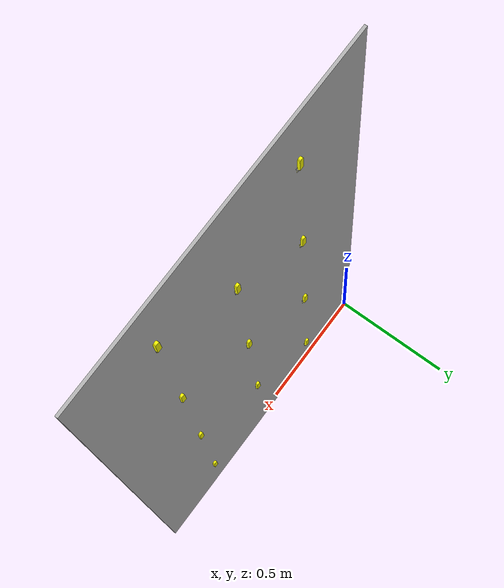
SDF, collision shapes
<?xml version="1.0" ?>
<sdf version="1.5">
  <model name="drc_practice_ball_valve_wall">
    <include>
      <uri>model://drc_practice_valve_wall</uri>
      <name>wall</name>
      <static>false</static>
    </include>
    <joint name="wall-joint" type="revolute">
      <parent>world</parent>
      <child>wall::link</child>
      <axis>
        <xyz>0 0 1</xyz>
        <limit>
          <lower>0</lower>
          <upper>0</upper>
        </limit>
        <use_parent_model_frame>true</use_parent_model_frame>
      </axis>
    </joint>
    <include>
      <uri>model://drc_practice_ball_valve</uri>
      <name>valve_0</name>
      <pose>0.919587 -0.0092 0.285 0 0 0</pose>
    </include>
    <include>
      <uri>model://drc_practice_ball_valve</uri>
      <name>valve_1</name>
      <pose>0.919587 -0.0092 0.8954 0 0 0</pose>
    </include>
    <include>
      <uri>model://drc_practice_ball_valve</uri>
      <name>valve_2</name>
      <pose>0.919587 -0.0092 1.5058 0 0 0</pose>
    </include>
    <include>
      <uri>model://drc_practice_ball_valve</uri>
      <name>valve_3</name>
      <pose>0.919587 -0.0092 2.1162 0 0 0</pose>
    </include>
    <include>
      <uri>model://drc_practice_ball_valve</uri>
      <name>valve_4</name>
      <pose>0.614335 -0.0092 0.5896 0 0 0</pose>
    </include>
    <include>
      <uri>model://drc_practice_ball_valve</uri>
      <name>valve_5</name>
      <pose>0.614335 -0.0092 1.2 0 0 0</pose>
    </include>
    <include>
      <uri>model://drc_practice_ball_valve</uri>
      <name>valve_6</name>
      <pose>0.614335 -0.0092 1.8104 0 0 0</pose>
    </include>
    <include>
      <uri>model://drc_practice_ball_valve</uri>
      <name>valve_7</name>
      <pose>0.309083 -0.0092 0.285 0 0 0</pose>
    </include>
    <include>
      <uri>model://drc_practice_ball_valve</uri>
      <name>valve_8</name>
      <pose>0.309083 -0.0092 0.8954 0 0 0</pose>
    </include>
    <include>
      <uri>model://drc_practice_ball_valve</uri>
      <name>valve_9</name>
      <pose>0.309083 -0.0092 1.5058 0 0 0</pose>
    </include>
    <include>
      <uri>model://drc_practice_ball_valve</uri>
      <name>valve_10</name>
      <pose>0.309083 -0.0092 2.1162 0 0 0</pose>
    </include>
  </model>
</sdf>

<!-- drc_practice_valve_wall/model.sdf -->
<sdf version="1.5">
  <model name="drc_practice_valve_wall">
    <link name="link">

      <inertial>
        <pose>0.6096 0.00476 1.2192 0 0 0</pose>
        <mass>2.5</mass>
        <inertia>
          <ixx>1.23872608133</ixx>
          <ixy>0</ixy>
          <ixz>0</ixz>
          <iyy>1.548384</iyy>
          <iyz>0</iyz>
          <izz>0.30969568133</izz>
        </inertia>
      </inertial>

      <collision name="collision">
        <pose>0.6096 0.00476 1.2192 0 0 0</pose>
        <geometry>
          <box>
            <size>1.2192 0.00952 2.4384</size>
          </box>
        </geometry>
      </collision>
      <visual name="visual">
        <pose>-0.004536186 -0.003571748 0 0 0 0</pose>
        <geometry>
          <mesh>
            <uri>model://drc_practice_valve_wall/meshes/five_dice_wall.dae</uri>
          </mesh>
        </geometry>
      </visual>
    </link>
  </model>
</sdf>

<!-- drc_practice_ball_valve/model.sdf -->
<sdf version="1.5">
  <model name="drc_practice_ball_valve">
    <link name="handle">
      <pose>0 0.0275 0.02222 -1.5708 3.1415 0</pose>
      <inertial>
        <mass>0.0802</mass>
        <pose>0.0 0.0435 0.0055 0 0 0</pose>
        <inertia>
          <ixx>0.000038</ixx>
          <iyy>0.000004</iyy>
          <izz>0.00004</izz>
          <ixy>0.0</ixy>
          <ixz>0.0</ixz>
          <iyz>0.0</iyz>
        </inertia>
      </inertial>
      <collision name="collision">
        <geometry>
          <mesh>
            <uri>model://drc_practice_ball_valve/meshes/ball_valve.dae</uri>
          </mesh>
        </geometry>
        <surface>
          <bounce>
            <restitution_coefficient>0.01</restitution_coefficient>
            <threshold>5.0</threshold>
          </bounce>
          <friction>
            <ode>
              <mu>5</mu>
              <mu2>5</mu2>
            </ode>
          </friction>
          <contact>
            <ode>
              <soft_cfm>0.01</soft_cfm>
              <!--"sponginess", 0.0=hard-->
              <kp>10000.0</kp>
              <kd>1000.0</kd>
              <max_vel>0.01</max_vel>
              <min_depth>0.001</min_depth>
            </ode>
          </contact>
        </surface>
      </collision>
      <visual name="visual">
        <geometry>
          <mesh>
            <uri>model://drc_practice_ball_valve/meshes/ball_valve.dae</uri>
          </mesh>
        </geometry>
      </visual>
    </link>
    <joint name="ball" type="revolute">
      <parent>world</parent>
      <child>handle</child>
      <axis>
        <xyz>0 1 0</xyz>
        <limit>
          <lower>0</lower>
          <upper>1.58</upper>
        </limit>
        <dynamics>
          <!--velocity dependent viscous damping coefficient of the joint-->
          <damping>0.3</damping>
          <!--default 0, static friction value of the joint-->
          <friction>10</friction>
        </dynamics>
        <use_parent_model_frame>true</use_parent_model_frame>
      </axis>
      <physics>
        <ode>
          <cfm_damping>1</cfm_damping>
        </ode>
      </physics>
    </joint>
  </model>
</sdf>
